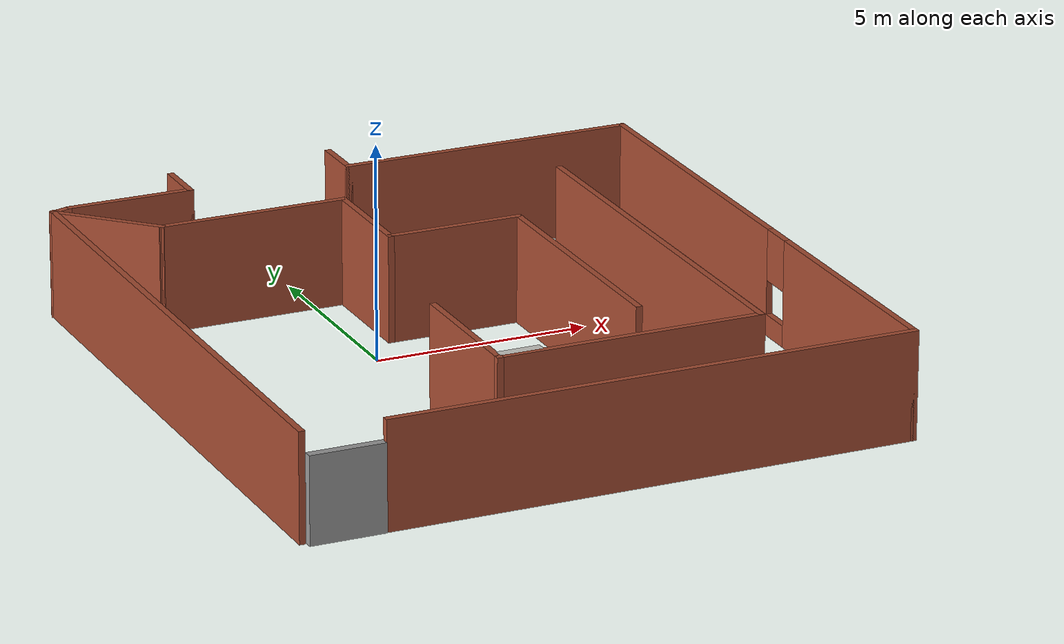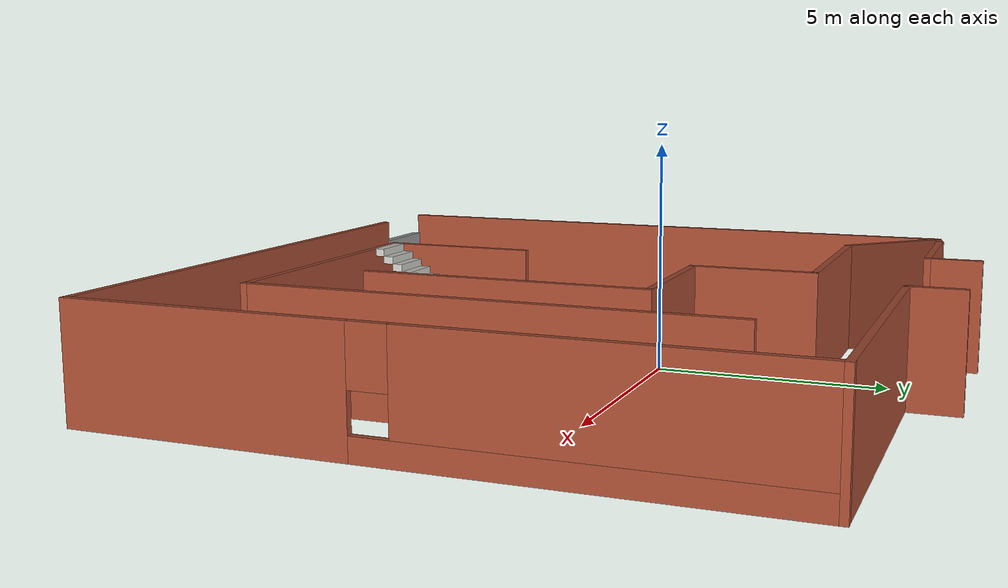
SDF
<?xml version='1.0'?>
<sdf version='1.7'>
  <model name='Test'>
    <pose>1.51826 -1.14105 0 0 -0 0</pose>
    <link name='Door_1'>
      <collision name='Door_1_Collision'>
        <geometry>
          <box>
            <size>1.73176 0.2 2</size>
          </box>
        </geometry>
        <pose>0 0 1 0 -0 0</pose>
      </collision>
      <visual name='Door_1_Visual'>
        <pose>0 0 1 0 -0 0</pose>
        <geometry>
          <box>
            <size>1.73176 0.2 2</size>
          </box>
        </geometry>
        <material>
          <script>
            <uri>file://media/materials/scripts/gazebo.material</uri>
            <name>Gazebo/Grey</name>
          </script>
        </material>
      </visual>
      <pose>-6.01864 -7.71571 0 0 0 -3.14108</pose>
    </link>
    <link name='Stairs_0'>
      <visual name='Stairs_0_Visual_0'>
        <pose>-1.06451 -2.10816 0.083333 0 -0 0</pose>
        <geometry>
          <box>
            <size>1 0.233333 0.166667</size>
          </box>
        </geometry>
        <material>
          <script>
            <uri>file://media/materials/scripts/gazebo.material</uri>
            <name>Gazebo/CeilingTiled</name>
          </script>
          <ambient>1 1 1 1</ambient>
        </material>
        <meta>
          <layer>0</layer>
        </meta>
      </visual>
      <collision name='Stairs_0_Collision_0'>
        <geometry>
          <box>
            <size>1 0.233333 0.166667</size>
          </box>
        </geometry>
        <pose>-1.06451 -2.10816 0.083333 0 -0 0</pose>
      </collision>
      <visual name='Stairs_0_Visual_1'>
        <pose>-1.06451 -2.3415 0.25 0 -0 0</pose>
        <geometry>
          <box>
            <size>1 0.233333 0.166667</size>
          </box>
        </geometry>
        <material>
          <script>
            <uri>file://media/materials/scripts/gazebo.material</uri>
            <name>Gazebo/CeilingTiled</name>
          </script>
          <ambient>1 1 1 1</ambient>
        </material>
        <meta>
          <layer>0</layer>
        </meta>
      </visual>
      <collision name='Stairs_0_Collision_1'>
        <geometry>
          <box>
            <size>1 0.233333 0.166667</size>
          </box>
        </geometry>
        <pose>-1.06451 -2.3415 0.25 0 -0 0</pose>
      </collision>
      <visual name='Stairs_0_Visual_2'>
        <pose>-1.06451 -2.57483 0.416667 0 -0 0</pose>
        <geometry>
          <box>
            <size>1 0.233333 0.166667</size>
          </box>
        </geometry>
        <material>
          <script>
            <uri>file://media/materials/scripts/gazebo.material</uri>
            <name>Gazebo/CeilingTiled</name>
          </script>
          <ambient>1 1 1 1</ambient>
        </material>
        <meta>
          <layer>0</layer>
        </meta>
      </visual>
      <collision name='Stairs_0_Collision_2'>
        <geometry>
          <box>
            <size>1 0.233333 0.166667</size>
          </box>
        </geometry>
        <pose>-1.06451 -2.57483 0.416667 0 -0 0</pose>
      </collision>
      <visual name='Stairs_0_Visual_3'>
        <pose>-1.06451 -2.80816 0.583333 0 -0 0</pose>
        <geometry>
          <box>
            <size>1 0.233333 0.166667</size>
          </box>
        </geometry>
        <material>
          <script>
            <uri>file://media/materials/scripts/gazebo.material</uri>
            <name>Gazebo/CeilingTiled</name>
          </script>
          <ambient>1 1 1 1</ambient>
        </material>
        <meta>
          <layer>0</layer>
        </meta>
      </visual>
      <collision name='Stairs_0_Collision_3'>
        <geometry>
          <box>
            <size>1 0.233333 0.166667</size>
          </box>
        </geometry>
        <pose>-1.06451 -2.80816 0.583333 0 -0 0</pose>
      </collision>
      <visual name='Stairs_0_Visual_4'>
        <pose>-1.06451 -3.0415 0.75 0 -0 0</pose>
        <geometry>
          <box>
            <size>1 0.233333 0.166667</size>
          </box>
        </geometry>
        <material>
          <script>
            <uri>file://media/materials/scripts/gazebo.material</uri>
            <name>Gazebo/CeilingTiled</name>
          </script>
          <ambient>1 1 1 1</ambient>
        </material>
        <meta>
          <layer>0</layer>
        </meta>
      </visual>
      <collision name='Stairs_0_Collision_4'>
        <geometry>
          <box>
            <size>1 0.233333 0.166667</size>
          </box>
        </geometry>
        <pose>-1.06451 -3.0415 0.75 0 -0 0</pose>
      </collision>
      <visual name='Stairs_0_Visual_5'>
        <pose>-1.06451 -3.27483 0.916667 0 -0 0</pose>
        <geometry>
          <box>
            <size>1 0.233333 0.166667</size>
          </box>
        </geometry>
        <material>
          <script>
            <uri>file://media/materials/scripts/gazebo.material</uri>
            <name>Gazebo/CeilingTiled</name>
          </script>
          <ambient>1 1 1 1</ambient>
        </material>
        <meta>
          <layer>0</layer>
        </meta>
      </visual>
      <collision name='Stairs_0_Collision_5'>
        <geometry>
          <box>
            <size>1 0.233333 0.166667</size>
          </box>
        </geometry>
        <pose>-1.06451 -3.27483 0.916667 0 -0 0</pose>
      </collision>
      <visual name='Stairs_0_Visual_6'>
        <pose>-1.06451 -3.50816 1.08333 0 -0 0</pose>
        <geometry>
          <box>
            <size>1 0.233333 0.166667</size>
          </box>
        </geometry>
        <material>
          <script>
            <uri>file://media/materials/scripts/gazebo.material</uri>
            <name>Gazebo/CeilingTiled</name>
          </script>
          <ambient>1 1 1 1</ambient>
        </material>
        <meta>
          <layer>0</layer>
        </meta>
      </visual>
      <collision name='Stairs_0_Collision_6'>
        <geometry>
          <box>
            <size>1 0.233333 0.166667</size>
          </box>
        </geometry>
        <pose>-1.06451 -3.50816 1.08333 0 -0 0</pose>
      </collision>
      <visual name='Stairs_0_Visual_7'>
        <pose>-1.06451 -3.7415 1.25 0 -0 0</pose>
        <geometry>
          <box>
            <size>1 0.233333 0.166667</size>
          </box>
        </geometry>
        <material>
          <script>
            <uri>file://media/materials/scripts/gazebo.material</uri>
            <name>Gazebo/CeilingTiled</name>
          </script>
          <ambient>1 1 1 1</ambient>
        </material>
        <meta>
          <layer>0</layer>
        </meta>
      </visual>
      <collision name='Stairs_0_Collision_7'>
        <geometry>
          <box>
            <size>1 0.233333 0.166667</size>
          </box>
        </geometry>
        <pose>-1.06451 -3.7415 1.25 0 -0 0</pose>
      </collision>
      <visual name='Stairs_0_Visual_8'>
        <pose>-1.06451 -3.97483 1.41667 0 -0 0</pose>
        <geometry>
          <box>
            <size>1 0.233333 0.166667</size>
          </box>
        </geometry>
        <material>
          <script>
            <uri>file://media/materials/scripts/gazebo.material</uri>
            <name>Gazebo/CeilingTiled</name>
          </script>
          <ambient>1 1 1 1</ambient>
        </material>
        <meta>
          <layer>0</layer>
        </meta>
      </visual>
      <collision name='Stairs_0_Collision_8'>
        <geometry>
          <box>
            <size>1 0.233333 0.166667</size>
          </box>
        </geometry>
        <pose>-1.06451 -3.97483 1.41667 0 -0 0</pose>
      </collision>
      <visual name='Stairs_0_Visual_9'>
        <pose>-1.06451 -4.20816 1.58333 0 -0 0</pose>
        <geometry>
          <box>
            <size>1 0.233333 0.166667</size>
          </box>
        </geometry>
        <material>
          <script>
            <uri>file://media/materials/scripts/gazebo.material</uri>
            <name>Gazebo/CeilingTiled</name>
          </script>
          <ambient>1 1 1 1</ambient>
        </material>
        <meta>
          <layer>0</layer>
        </meta>
      </visual>
      <collision name='Stairs_0_Collision_9'>
        <geometry>
          <box>
            <size>1 0.233333 0.166667</size>
          </box>
        </geometry>
        <pose>-1.06451 -4.20816 1.58333 0 -0 0</pose>
      </collision>
      <visual name='Stairs_0_Visual_10'>
        <pose>-1.06451 -4.44149 1.75 0 -0 0</pose>
        <geometry>
          <box>
            <size>1 0.233333 0.166667</size>
          </box>
        </geometry>
        <material>
          <script>
            <uri>file://media/materials/scripts/gazebo.material</uri>
            <name>Gazebo/CeilingTiled</name>
          </script>
          <ambient>1 1 1 1</ambient>
        </material>
        <meta>
          <layer>0</layer>
        </meta>
      </visual>
      <collision name='Stairs_0_Collision_10'>
        <geometry>
          <box>
            <size>1 0.233333 0.166667</size>
          </box>
        </geometry>
        <pose>-1.06451 -4.44149 1.75 0 -0 0</pose>
      </collision>
      <visual name='Stairs_0_Visual_11'>
        <pose>-1.06451 -4.67483 1.91667 0 -0 0</pose>
        <geometry>
          <box>
            <size>1 0.233333 0.166667</size>
          </box>
        </geometry>
        <material>
          <script>
            <uri>file://media/materials/scripts/gazebo.material</uri>
            <name>Gazebo/CeilingTiled</name>
          </script>
          <ambient>1 1 1 1</ambient>
        </material>
        <meta>
          <layer>0</layer>
        </meta>
      </visual>
      <collision name='Stairs_0_Collision_11'>
        <geometry>
          <box>
            <size>1 0.233333 0.166667</size>
          </box>
        </geometry>
        <pose>-1.06451 -4.67483 1.91667 0 -0 0</pose>
      </collision>
      <visual name='Stairs_0_Visual_12'>
        <pose>-1.06451 -4.90816 2.08333 0 -0 0</pose>
        <geometry>
          <box>
            <size>1 0.233333 0.166667</size>
          </box>
        </geometry>
        <material>
          <script>
            <uri>file://media/materials/scripts/gazebo.material</uri>
            <name>Gazebo/CeilingTiled</name>
          </script>
          <ambient>1 1 1 1</ambient>
        </material>
        <meta>
          <layer>0</layer>
        </meta>
      </visual>
      <collision name='Stairs_0_Collision_12'>
        <geometry>
          <box>
            <size>1 0.233333 0.166667</size>
          </box>
        </geometry>
        <pose>-1.06451 -4.90816 2.08333 0 -0 0</pose>
      </collision>
      <visual name='Stairs_0_Visual_13'>
        <pose>-1.06451 -5.1415 2.25 0 -0 0</pose>
        <geometry>
          <box>
            <size>1 0.233333 0.166667</size>
          </box>
        </geometry>
        <material>
          <script>
            <uri>file://media/materials/scripts/gazebo.material</uri>
            <name>Gazebo/CeilingTiled</name>
          </script>
          <ambient>1 1 1 1</ambient>
        </material>
        <meta>
          <layer>0</layer>
        </meta>
      </visual>
      <collision name='Stairs_0_Collision_13'>
        <geometry>
          <box>
            <size>1 0.233333 0.166667</size>
          </box>
        </geometry>
        <pose>-1.06451 -5.1415 2.25 0 -0 0</pose>
      </collision>
      <visual name='Stairs_0_Visual_14'>
        <pose>-1.06451 -5.37483 2.41667 0 -0 0</pose>
        <geometry>
          <box>
            <size>1 0.233333 0.166667</size>
          </box>
        </geometry>
        <material>
          <script>
            <uri>file://media/materials/scripts/gazebo.material</uri>
            <name>Gazebo/CeilingTiled</name>
          </script>
          <ambient>1 1 1 1</ambient>
        </material>
        <meta>
          <layer>0</layer>
        </meta>
      </visual>
      <collision name='Stairs_0_Collision_14'>
        <geometry>
          <box>
            <size>1 0.233333 0.166667</size>
          </box>
        </geometry>
        <pose>-1.06451 -5.37483 2.41667 0 -0 0</pose>
      </collision>
    </link>
    <link name='Wall_0'>
      <collision name='Wall_0_Collision'>
        <geometry>
          <box>
            <size>14.25 0.15 2.5</size>
          </box>
        </geometry>
        <pose>0 0 1.25 0 -0 0</pose>
      </collision>
      <visual name='Wall_0_Visual'>
        <pose>0 0 1.25 0 -0 0</pose>
        <geometry>
          <box>
            <size>14.25 0.15 2.5</size>
          </box>
        </geometry>
        <material>
          <script>
            <uri>file://media/materials/scripts/gazebo.material</uri>
            <name>Gazebo/Bricks</name>
          </script>
          <ambient>1 0.764706 0.305882 1</ambient>
        </material>
        <meta>
          <layer>0</layer>
        </meta>
      </visual>
      <pose>-6.97826 -0.538948 0 0 -0 1.5708</pose>
    </link>
    <link name='Wall_11'>
      <pose>7.00933 -0.55 0 0 -0 1.5708</pose>
      <visual name='Wall_11_Visual_0'>
        <pose>-4.23587 0 1.25 0 -0 0</pose>
        <geometry>
          <box>
            <size>6.02826 0.15 2.5</size>
          </box>
        </geometry>
        <material>
          <script>
            <uri>file://media/materials/scripts/gazebo.material</uri>
            <name>Gazebo/Bricks</name>
          </script>
          <ambient>1 1 1 1</ambient>
        </material>
        <meta>
          <layer>0</layer>
        </meta>
      </visual>
      <collision name='Wall_11_Collision_0'>
        <geometry>
          <box>
            <size>6.02826 0.15 2.5</size>
          </box>
        </geometry>
        <pose>-4.23587 0 1.25 0 -0 0</pose>
      </collision>
      <visual name='Wall_11_Visual_1'>
        <pose>3.01413 0 0.25 0 -0 0</pose>
        <geometry>
          <box>
            <size>8.47174 0.15 0.5</size>
          </box>
        </geometry>
        <material>
          <script>
            <uri>file://media/materials/scripts/gazebo.material</uri>
            <name>Gazebo/Bricks</name>
          </script>
          <ambient>1 1 1 1</ambient>
        </material>
        <meta>
          <layer>0</layer>
        </meta>
      </visual>
      <collision name='Wall_11_Collision_1'>
        <geometry>
          <box>
            <size>8.47174 0.15 0.5</size>
          </box>
        </geometry>
        <pose>3.01413 0 0.25 0 -0 0</pose>
      </collision>
      <visual name='Wall_11_Visual_2'>
        <pose>3.41413 0 1.5 0 -0 0</pose>
        <geometry>
          <box>
            <size>7.67174 0.15 2</size>
          </box>
        </geometry>
        <material>
          <script>
            <uri>file://media/materials/scripts/gazebo.material</uri>
            <name>Gazebo/Bricks</name>
          </script>
          <ambient>1 1 1 1</ambient>
        </material>
        <meta>
          <layer>0</layer>
        </meta>
      </visual>
      <collision name='Wall_11_Collision_2'>
        <geometry>
          <box>
            <size>7.67174 0.15 2</size>
          </box>
        </geometry>
        <pose>3.41413 0 1.5 0 -0 0</pose>
      </collision>
      <visual name='Wall_11_Visual_3'>
        <pose>-0.821741 0 1.9 0 -0 0</pose>
        <geometry>
          <box>
            <size>0.8 0.15 1.2</size>
          </box>
        </geometry>
        <material>
          <script>
            <uri>file://media/materials/scripts/gazebo.material</uri>
            <name>Gazebo/Bricks</name>
          </script>
          <ambient>1 1 1 1</ambient>
        </material>
        <meta>
          <layer>0</layer>
        </meta>
      </visual>
      <collision name='Wall_11_Collision_3'>
        <geometry>
          <box>
            <size>0.8 0.15 1.2</size>
          </box>
        </geometry>
        <pose>-0.821741 0 1.9 0 -0 0</pose>
      </collision>
    </link>
    <link name='Wall_12'>
      <collision name='Wall_12_Collision'>
        <geometry>
          <box>
            <size>7 0.15 2.5</size>
          </box>
        </geometry>
        <pose>0 0 1.25 0 -0 0</pose>
      </collision>
      <visual name='Wall_12_Visual'>
        <pose>0 0 1.25 0 -0 0</pose>
        <geometry>
          <box>
            <size>7 0.15 2.5</size>
          </box>
        </geometry>
        <material>
          <script>
            <uri>file://media/materials/scripts/gazebo.material</uri>
            <name>Gazebo/Bricks</name>
          </script>
          <ambient>1 1 1 1</ambient>
        </material>
        <meta>
          <layer>0</layer>
        </meta>
      </visual>
      <pose>3.58433 6.625 0 0 -0 3.14159</pose>
    </link>
    <link name='Wall_13'>
      <collision name='Wall_13_Collision'>
        <geometry>
          <box>
            <size>1.25 0.15 2.5</size>
          </box>
        </geometry>
        <pose>0 0 1.25 0 -0 0</pose>
      </collision>
      <visual name='Wall_13_Visual'>
        <pose>0 0 1.25 0 -0 0</pose>
        <geometry>
          <box>
            <size>1.25 0.15 2.5</size>
          </box>
        </geometry>
        <material>
          <script>
            <uri>file://media/materials/scripts/gazebo.material</uri>
            <name>Gazebo/Bricks</name>
          </script>
          <ambient>1 1 1 1</ambient>
        </material>
        <meta>
          <layer>0</layer>
        </meta>
      </visual>
      <pose>0.159326 7.175 0 0 -0 1.5708</pose>
    </link>
    <link name='Wall_15'>
      <collision name='Wall_15_Collision'>
        <geometry>
          <box>
            <size>1.25 0.15 2.5</size>
          </box>
        </geometry>
        <pose>0 0 1.25 0 -0 0</pose>
      </collision>
      <visual name='Wall_15_Visual'>
        <pose>0 0 1.25 0 -0 0</pose>
        <geometry>
          <box>
            <size>1.25 0.15 2.5</size>
          </box>
        </geometry>
        <material>
          <script>
            <uri>file://media/materials/scripts/gazebo.material</uri>
            <name>Gazebo/Bricks</name>
          </script>
          <ambient>1 1 1 1</ambient>
        </material>
        <meta>
          <layer>0</layer>
        </meta>
      </visual>
      <pose>-3.69067 7.175 0 0 -0 -1.5708</pose>
    </link>
    <link name='Wall_16'>
      <collision name='Wall_16_Collision'>
        <geometry>
          <box>
            <size>3 0.15 2.5</size>
          </box>
        </geometry>
        <pose>0 0 1.25 0 -0 0</pose>
      </collision>
      <visual name='Wall_16_Visual'>
        <pose>0 0 1.25 0 -0 0</pose>
        <geometry>
          <box>
            <size>3 0.15 2.5</size>
          </box>
        </geometry>
        <material>
          <script>
            <uri>file://media/materials/scripts/gazebo.material</uri>
            <name>Gazebo/Bricks</name>
          </script>
          <ambient>1 1 1 1</ambient>
        </material>
        <meta>
          <layer>0</layer>
        </meta>
      </visual>
      <pose>-5.11567 6.625 0 0 -0 3.14159</pose>
    </link>
    <link name='Wall_17'>
      <collision name='Wall_17_Collision'>
        <geometry>
          <box>
            <size>0.602179 0.15 2.5</size>
          </box>
        </geometry>
        <pose>0 0 1.25 0 -0 0</pose>
      </collision>
      <visual name='Wall_17_Visual'>
        <pose>0 0 1.25 0 -0 0</pose>
        <geometry>
          <box>
            <size>0.602179 0.15 2.5</size>
          </box>
        </geometry>
        <material>
          <script>
            <uri>file://media/materials/scripts/gazebo.material</uri>
            <name>Gazebo/Bricks</name>
          </script>
          <ambient>1 1 1 1</ambient>
        </material>
        <meta>
          <layer>0</layer>
        </meta>
      </visual>
      <pose>-6.75947 6.56803 0 0 -0 -2.88685</pose>
    </link>
    <link name='Wall_18'>
      <collision name='Wall_18_Collision'>
        <geometry>
          <box>
            <size>2.75 0.15 2.5</size>
          </box>
        </geometry>
        <pose>0 0 1.25 0 -0 0</pose>
      </collision>
      <visual name='Wall_18_Visual'>
        <pose>0 0 1.25 0 -0 0</pose>
        <geometry>
          <box>
            <size>2.75 0.15 2.5</size>
          </box>
        </geometry>
        <material>
          <script>
            <uri>file://media/materials/scripts/gazebo.material</uri>
            <name>Gazebo/Bricks</name>
          </script>
          <ambient>1 1 1 1</ambient>
        </material>
        <meta>
          <layer>0</layer>
        </meta>
      </visual>
      <pose>-6.05902 5.59181 0 0 -0 -0.785398</pose>
    </link>
    <link name='Wall_19'>
      <collision name='Wall_19_Collision'>
        <geometry>
          <box>
            <size>4.5 0.15 2.5</size>
          </box>
        </geometry>
        <pose>0 0 1.25 0 -0 0</pose>
      </collision>
      <visual name='Wall_19_Visual'>
        <pose>0 0 1.25 0 -0 0</pose>
        <geometry>
          <box>
            <size>4.5 0.15 2.5</size>
          </box>
        </geometry>
        <material>
          <script>
            <uri>file://media/materials/scripts/gazebo.material</uri>
            <name>Gazebo/Bricks</name>
          </script>
          <ambient>1 1 1 1</ambient>
        </material>
        <meta>
          <layer>0</layer>
        </meta>
      </visual>
      <pose>-2.96478 4.67258 0 0 -0 0</pose>
    </link>
    <link name='Wall_20'>
      <collision name='Wall_20_Collision'>
        <geometry>
          <box>
            <size>2.75 0.15 2.5</size>
          </box>
        </geometry>
        <pose>0 0 1.25 0 -0 0</pose>
      </collision>
      <visual name='Wall_20_Visual'>
        <pose>0 0 1.25 0 -0 0</pose>
        <geometry>
          <box>
            <size>2.75 0.15 2.5</size>
          </box>
        </geometry>
        <material>
          <script>
            <uri>file://media/materials/scripts/gazebo.material</uri>
            <name>Gazebo/Bricks</name>
          </script>
          <ambient>1 1 1 1</ambient>
        </material>
        <meta>
          <layer>0</layer>
        </meta>
      </visual>
      <pose>-0.789783 3.37257 0 0 -0 -1.5708</pose>
    </link>
    <link name='Wall_21'>
      <collision name='Wall_21_Collision'>
        <geometry>
          <box>
            <size>3.25 0.15 2.5</size>
          </box>
        </geometry>
        <pose>0 0 1.25 0 -0 0</pose>
      </collision>
      <visual name='Wall_21_Visual'>
        <pose>0 0 1.25 0 -0 0</pose>
        <geometry>
          <box>
            <size>3.25 0.15 2.5</size>
          </box>
        </geometry>
        <material>
          <script>
            <uri>file://media/materials/scripts/gazebo.material</uri>
            <name>Gazebo/Bricks</name>
          </script>
          <ambient>1 1 1 1</ambient>
        </material>
        <meta>
          <layer>0</layer>
        </meta>
      </visual>
      <pose>0.760217 2.07258 0 0 -0 0</pose>
    </link>
    <link name='Wall_22'>
      <collision name='Wall_22_Collision'>
        <geometry>
          <box>
            <size>6.25 0.15 2.5</size>
          </box>
        </geometry>
        <pose>0 0 1.25 0 -0 0</pose>
      </collision>
      <visual name='Wall_22_Visual'>
        <pose>0 0 1.25 0 -0 0</pose>
        <geometry>
          <box>
            <size>6.25 0.15 2.5</size>
          </box>
        </geometry>
        <material>
          <script>
            <uri>file://media/materials/scripts/gazebo.material</uri>
            <name>Gazebo/Bricks</name>
          </script>
          <ambient>1 1 1 1</ambient>
        </material>
        <meta>
          <layer>0</layer>
        </meta>
      </visual>
      <pose>2.31022 -0.977425 0 0 -0 -1.5708</pose>
    </link>
    <link name='Wall_24'>
      <collision name='Wall_24_Collision'>
        <geometry>
          <box>
            <size>10.25 0.15 2.5</size>
          </box>
        </geometry>
        <pose>0 0 1.25 0 -0 0</pose>
      </collision>
      <visual name='Wall_24_Visual'>
        <pose>0 0 1.25 0 -0 0</pose>
        <geometry>
          <box>
            <size>10.25 0.15 2.5</size>
          </box>
        </geometry>
        <material>
          <script>
            <uri>file://media/materials/scripts/gazebo.material</uri>
            <name>Gazebo/Bricks</name>
          </script>
          <ambient>1 1 1 1</ambient>
        </material>
        <meta>
          <layer>0</layer>
        </meta>
      </visual>
      <pose>4.48548 -0.48174 0 0 -0 -1.5708</pose>
    </link>
    <link name='Wall_25'>
      <collision name='Wall_25_Collision'>
        <geometry>
          <box>
            <size>6.25 0.15 2.5</size>
          </box>
        </geometry>
        <pose>0 0 1.25 0 -0 0</pose>
      </collision>
      <visual name='Wall_25_Visual'>
        <pose>0 0 1.25 0 -0 0</pose>
        <geometry>
          <box>
            <size>6.25 0.15 2.5</size>
          </box>
        </geometry>
        <material>
          <script>
            <uri>file://media/materials/scripts/gazebo.material</uri>
            <name>Gazebo/Bricks</name>
          </script>
          <ambient>1 1 1 1</ambient>
        </material>
        <meta>
          <layer>0</layer>
        </meta>
      </visual>
      <pose>1.43548 -5.53174 0 0 -0 3.14159</pose>
    </link>
    <link name='Wall_26'>
      <collision name='Wall_26_Collision'>
        <geometry>
          <box>
            <size>3.5 0.15 2.5</size>
          </box>
        </geometry>
        <pose>0 0 1.25 0 -0 0</pose>
      </collision>
      <visual name='Wall_26_Visual'>
        <pose>0 0 1.25 0 -0 0</pose>
        <geometry>
          <box>
            <size>3.5 0.15 2.5</size>
          </box>
        </geometry>
        <material>
          <script>
            <uri>file://media/materials/scripts/gazebo.material</uri>
            <name>Gazebo/Bricks</name>
          </script>
          <ambient>0.921569 0.807843 0.615686 1</ambient>
        </material>
        <meta>
          <layer>0</layer>
        </meta>
      </visual>
      <pose>-1.61452 -3.85674 0 0 -0 1.5708</pose>
    </link>
    <link name='Wall_3'>
      <collision name='Wall_3_Collision'>
        <geometry>
          <box>
            <size>12.25 0.15 2.5</size>
          </box>
        </geometry>
        <pose>0 0 1.25 0 -0 0</pose>
      </collision>
      <visual name='Wall_3_Visual'>
        <pose>0 0 1.25 0 -0 0</pose>
        <geometry>
          <box>
            <size>12.25 0.15 2.5</size>
          </box>
        </geometry>
        <material>
          <script>
            <uri>file://media/materials/scripts/gazebo.material</uri>
            <name>Gazebo/Bricks</name>
          </script>
          <ambient>0.921569 0.807843 0.615686 1</ambient>
        </material>
        <meta>
          <layer>0</layer>
        </meta>
      </visual>
      <pose>0.959326 -7.725 0 0 -0 0</pose>
    </link>
    <static>1</static>
  </model>
</sdf>
